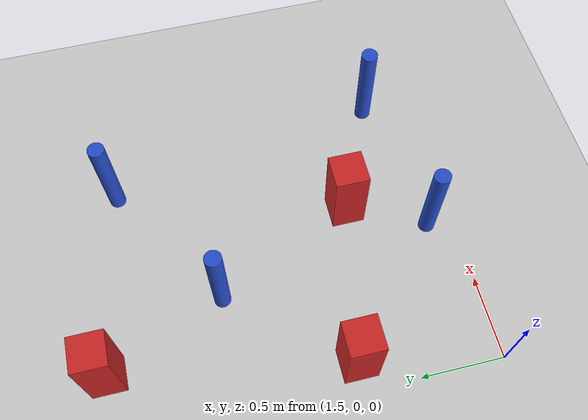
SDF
<sdf version="1.6">
 <world name="default">
  <model name="ground_plane">
   <static>1</static>
   <link name="link">
    <collision name="collision">
     <geometry><plane><normal>0 0 1</normal><size>100 100</size></plane></geometry>
     <surface><friction><ode><mu>100</mu><mu2>50</mu2></ode></friction></surface>
    </collision>
    <visual name="visual">
     <cast_shadows>0</cast_shadows>
     <geometry><plane><normal>0 0 1</normal><size>100 100</size></plane></geometry>
     <material>
      <ambient>1.0 1.0 1.0 1.0</ambient>
      <diffuse>0.8 0.8 0.8 1.0</diffuse>
      <specular>0.01 0.01 0.01 1.000000</specular>
     </material>
    </visual>
   </link>
  </model>
  <model name="pole_obstacle38">
   <static>true</static>
   <pose>3.3402823136 0.316482043341 -3.09024884793e-07 -7.19054271912e-07 -2.1131507512e-07 -1.93935509259e-07</pose>
   <link name="link">
    <pose>0 0 0.3 0 -0 0</pose>
    <inertial>
     <mass>1</mass>
     <inertia><ixx>0.145833</ixx><ixy>0</ixy><ixz>0</ixz><iyy>0.145833</iyy><iyz>0</iyz><izz>0.125</izz></inertia>
    </inertial>
    <collision name="collision">
     <geometry><cylinder><radius>0.05</radius><length>.6</length></cylinder></geometry>
    </collision>
    <visual name="visual">
     <geometry><cylinder><radius>0.05</radius><length>.6</length></cylinder></geometry>
     <material>
      <script><name>Gazebo/Blue</name><uri>file://media/materials/scripts/gazebo.material</uri></script>
     </material>
    </visual>
   </link>
  </model>
  <model name="pole_obstacle46">
   <static>true</static>
   <pose>2.23304178201 1.50109195398 -3.09024884793e-07 -7.19054271912e-07 -2.11315075122e-07 -1.93935509259e-07</pose>
   <link name="link">
    <pose>0 0 0.3 0 -0 0</pose>
    <inertial>
     <mass>1</mass>
     <inertia><ixx>0.145833</ixx><ixy>0</ixy><ixz>0</ixz><iyy>0.145833</iyy><iyz>0</iyz><izz>0.125</izz></inertia>
    </inertial>
    <collision name="collision">
     <geometry><cylinder><radius>0.05</radius><length>.6</length></cylinder></geometry>
    </collision>
    <visual name="visual">
     <geometry><cylinder><radius>0.05</radius><length>.6</length></cylinder></geometry>
     <material>
      <script><name>Gazebo/Blue</name><uri>file://media/materials/scripts/gazebo.material</uri></script>
     </material>
    </visual>
   </link>
  </model>
  <model name="square_post_obstacle82">
   <static>true</static>
   <pose>2.64726107092 0.635739808452 -4.36207812815e-07 3.75137919937e-06 9.77721102514e-07 2.47381364184e-05</pose>
   <link name="link">
    <pose>0 0 0.25 0 -0 0</pose>
    <inertial>
     <mass>100</mass>
     <inertia>
      <ixx>0.166667</ixx>
      <ixy>0</ixy>
      <ixz>0</ixz>
      <iyy>0.166667</iyy>
      <iyz>0</iyz>
      <izz>0.166667</izz>
     </inertia>
    </inertial>
    <collision name="collision"><geometry><box><size>.2 .2 .5</size></box></geometry></collision>
    <visual name="visual">
     <geometry><box><size>.2 .2 .5</size></box></geometry>
     <material>
      <script><name>Gazebo/Red</name><uri>file://media/materials/scripts/gazebo.material</uri></script>
     </material>
    </visual>
   </link>
  </model>
  <model name="square_post_obstacle86">
   <static>true</static>
   <pose>1.92738016484 2.22029041243 -4.36207812815e-07 3.75137919937e-06 9.77721102514e-07 2.47381364184e-05</pose>
   <link name="link">
    <pose>0 0 0.25 0 -0 0</pose>
    <inertial>
     <mass>100</mass>
     <inertia>
      <ixx>0.166667</ixx>
      <ixy>0</ixy>
      <ixz>0</ixz>
      <iyy>0.166667</iyy>
      <iyz>0</iyz>
      <izz>0.166667</izz>
     </inertia>
    </inertial>
    <collision name="collision"><geometry><box><size>.2 .2 .5</size></box></geometry></collision>
    <visual name="visual">
     <geometry><box><size>.2 .2 .5</size></box></geometry>
     <material>
      <script><name>Gazebo/Red</name><uri>file://media/materials/scripts/gazebo.material</uri></script>
     </material>
    </visual>
   </link>
  </model>
  <model name="pole_obstacle109">
   <static>true</static>
   <pose>3.05372442715 2.0213238326 -3.09024884793e-07 -7.19054271912e-07 -2.11315075129e-07 -1.93935509262e-07</pose>
   <link name="link">
    <pose>0 0 0.3 0 -0 0</pose>
    <inertial>
     <mass>1</mass>
     <inertia><ixx>0.145833</ixx><ixy>0</ixy><ixz>0</ixz><iyy>0.145833</iyy><iyz>0</iyz><izz>0.125</izz></inertia>
    </inertial>
    <collision name="collision">
     <geometry><cylinder><radius>0.05</radius><length>.6</length></cylinder></geometry>
    </collision>
    <visual name="visual">
     <geometry><cylinder><radius>0.05</radius><length>.6</length></cylinder></geometry>
     <material>
      <script><name>Gazebo/Blue</name><uri>file://media/materials/scripts/gazebo.material</uri></script>
     </material>
    </visual>
   </link>
  </model>
  <model name="square_post_obstacle106">
   <static>true</static>
   <pose>1.67220113616 0.829683560557 -4.36207812815e-07 3.75137919937e-06 9.77721102514e-07 2.47381364184e-05</pose>
   <link name="link">
    <pose>0 0 0.25 0 -0 0</pose>
    <inertial>
     <mass>100</mass>
     <inertia>
      <ixx>0.166667</ixx>
      <ixy>0</ixy>
      <ixz>0</ixz>
      <iyy>0.166667</iyy>
      <iyz>0</iyz>
      <izz>0.166667</izz>
     </inertia>
    </inertial>
    <collision name="collision"><geometry><box><size>.2 .2 .5</size></box></geometry></collision>
    <visual name="visual">
     <geometry><box><size>.2 .2 .5</size></box></geometry>
     <material>
      <script><name>Gazebo/Red</name><uri>file://media/materials/scripts/gazebo.material</uri></script>
     </material>
    </visual>
   </link>
  </model>
  <model name="pole_obstacle155">
   <static>true</static>
   <pose>2.42044889918 0.164741486268 -3.09024884793e-07 -7.19054271912e-07 -2.1131507512e-07 -1.93935509258e-07</pose>
   <link name="link">
    <pose>0 0 0.3 0 -0 0</pose>
    <inertial>
     <mass>1</mass>
     <inertia><ixx>0.145833</ixx><ixy>0</ixy><ixz>0</ixz><iyy>0.145833</iyy><iyz>0</iyz><izz>0.125</izz></inertia>
    </inertial>
    <collision name="collision">
     <geometry><cylinder><radius>0.05</radius><length>.6</length></cylinder></geometry>
    </collision>
    <visual name="visual">
     <geometry><cylinder><radius>0.05</radius><length>.6</length></cylinder></geometry>
     <material>
      <script><name>Gazebo/Blue</name><uri>file://media/materials/scripts/gazebo.material</uri></script>
     </material>
    </visual>
   </link>
  </model>
 </world>
</sdf>
